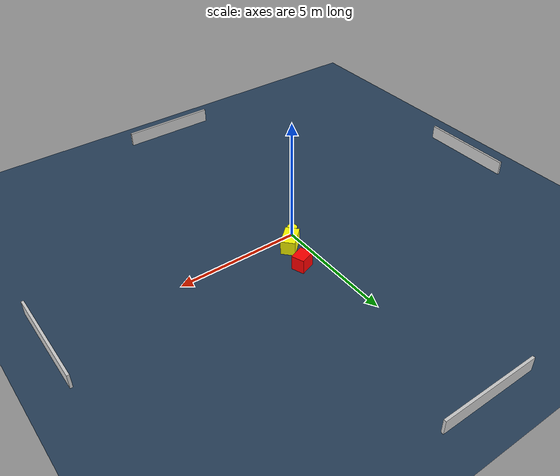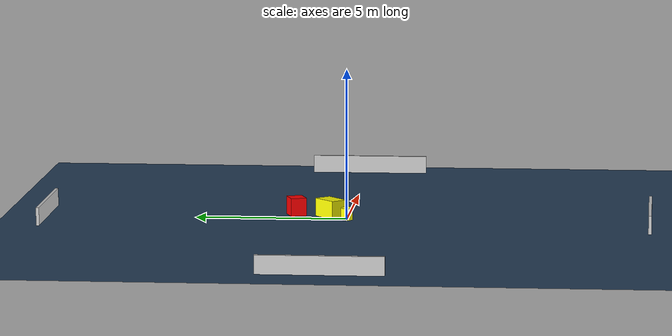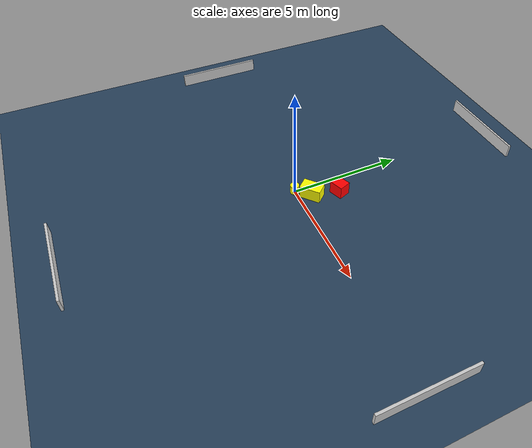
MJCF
<?xml version="1.0" ?>
<mujoco model="generated_environment">
  <option timestep="0.01" integrator="RK4" cone="elliptic"/>
  <default>
    <geom density="1"/>
  </default>
  <asset>
    <texture builtin="gradient" height="3072" name="skybox" rgb1="0.3 0.5 0.7" rgb2="0 0 0" type="skybox" width="512"/>
    <texture builtin="checker" height="300" name="groundplane" rgb1="0.2 0.3 0.4" rgb2="0.1 0.2 0.3" type="2d" width="300"/>
    <material name="groundplane" reflectance="0.2" texrepeat="5 5" texture="groundplane"/>
  </asset>
  <worldbody>
    <light dir="0 0 -1" directional="true" pos="0 0 1.5"/>
    <geom condim="3" friction="0.5 0.005 0.001" material="groundplane" name="floor" pos="0 0 0" size="0 0 0.05" type="plane"/>
    <body name="walls">
      <geom name="wall_1" condim="4" pos="-10.0 0.0 0.3" rgba="0.800000011920929 0.800000011920929 0.800000011920929 1.0" size="0.05 2.0 0.3" type="box"/>
      <geom name="wall_2" condim="4" pos="10.0 0.0 0.3" rgba="0.800000011920929 0.800000011920929 0.800000011920929 1.0" size="0.05 2.0 0.3" type="box"/>
      <geom name="wall_3" condim="4" pos="0.0 -10.0 0.3" rgba="0.800000011920929 0.800000011920929 0.800000011920929 1.0" size="2.0 0.05 0.3" type="box"/>
      <geom name="wall_4" condim="4" pos="0.0 10.0 0.3" rgba="0.800000011920929 0.800000011920929 0.800000011920929 1.0" size="2.0 0.05 0.3" type="box"/>
    </body>
    <body name="robot">
      <joint name="joint_x" type="slide" pos="0 0 0" axis="1 0 0"/>
      <joint name="joint_y" type="slide" pos="0 0 0" axis="0 1 0"/>
      <geom name="robot" type="cylinder" pos="0.0 0.0 0.2" size="0.2 0.2 0.0" mass="5.0" friction="1.0 0.005 0.0001" condim="4" rgba="1.0 1.0 0.0 1.0"/>
    </body>
    <body name="obstacle_1_movable">
      <geom name="obstacle_1_movable" condim="4" pos="0.5219945940929793 0.5723970684220226 0.3" euler="0 0 41.597784917246486" friction="0.0 0.005 0.001" rgba="1.0 1.0 0.0 1.0" size="0.4620078539445707 0.28245971401662884 0.3" type="box" mass="0.1"/>
      <joint type="free"/>
    </body>
    <body name="obstacle_2_static">
      <geom name="obstacle_2_static" condim="4" pos="0.8332909248372605 1.7474169194649813 0.3" euler="0 0 110.2395771224459" friction="0.0 0.005 0.001" rgba="1.0 0.0 0.0 1.0" size="0.26194346037661104 0.31508281779556474 0.3" type="box"/>
    </body>
  </worldbody>
  <actuator>
    <motor name="actuator_x" joint="joint_x" gear="1" ctrlrange="-1 1"/>
    <motor name="actuator_y" joint="joint_y" gear="1" ctrlrange="-1 1"/>
  </actuator>
</mujoco>
